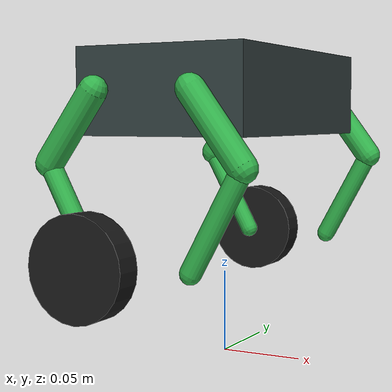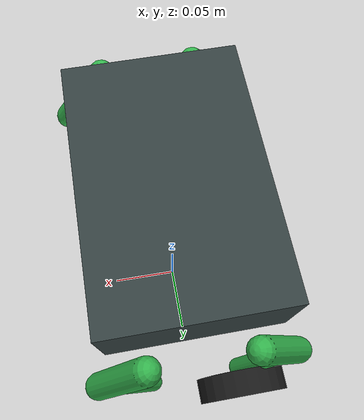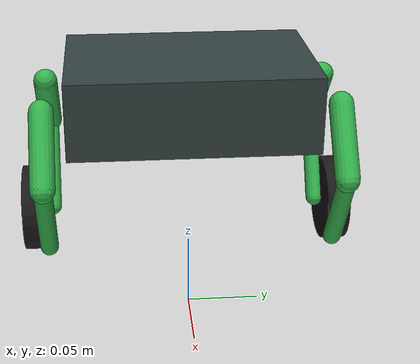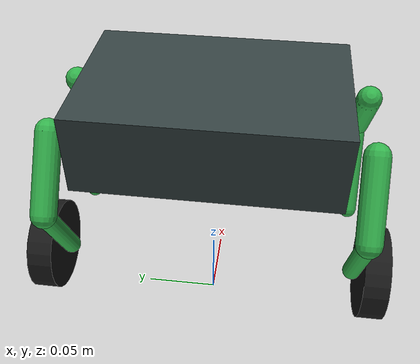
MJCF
<?xml version="1.0" ?>
<mujoco model="stackforce_mini">
  <compiler angle="radian" autolimits="true"/>

  <default>
    <default class="sf">
      <joint damping="0.03" frictionloss="0.015" armature="0.002"/>
      <geom solimp="0.9 0.95 0.001" solref="0.002 1" friction="0.8 0.02 0.002" rgba="0.2 0.7 0.3 1"/>
      <default class="visual"><geom contype="0" conaffinity="0" group="2"/></default>
      <default class="collision"><geom group="3"/></default>
      <default class="servo">
        <position kp="0.35" dampratio="1" forcerange="-0.35 0.35"/>
      </default>
      <default class="wheel_motor">
        <motor gear="1" ctrlrange="-0.25 0.25"/>
      </default>
    </default>
  </default>

  <worldbody>
    <body name="trunk_base" pos="0 0 0.160" childclass="sf">
      <freejoint name="trunk_base_freejoint"/>
      <inertial pos="0 0 0" mass="0.260" diaginertia="0.0005 0.0007 0.0004"/>
      <geom type="box" size="0.0525 0.080 0.025" class="visual" rgba="0.2 0.25 0.25 1"/>
      <geom type="box" size="0.0525 0.080 0.025" class="collision" name="trunk_collision" mass="0"/>
      <site name="imu" pos="0 0 0" size="0.005"/>

      <!-- LEFT LEG 5-BAR LINKAGE -->
      <body name="left_front_thigh" pos="0.030 0.095 0">
        <joint name="left_front_hip" type="hinge" axis="0 1 0" range="-1.2 1.2"/>
        <geom type="capsule" size="0.008" fromto="0 0 0 0.030 0 -0.040" mass="0.018" class="visual"/>
        <body name="left_front_forearm" pos="0.030 0 -0.040">
          <joint name="left_front_knee" type="hinge" axis="0 1 0" range="-2.0 2.0"/>
          <geom type="capsule" size="0.006" fromto="0 0 0 -0.030 0 -0.055" mass="0.012" class="visual"/>
          <site name="left_front_link_tip" pos="-0.030 0 -0.055" size="0.003"/>
        </body>
      </body>

      <body name="left_rear_thigh" pos="-0.030 0.095 0">
        <joint name="left_rear_hip" type="hinge" axis="0 1 0" range="-1.2 1.2"/>
        <geom type="capsule" size="0.008" fromto="0 0 0 -0.030 0 -0.040" mass="0.018" class="visual"/>
        <body name="left_rear_forearm" pos="-0.030 0 -0.040">
          <joint name="left_rear_knee" type="hinge" axis="0 1 0" range="-2.0 2.0"/>
          <geom type="capsule" size="0.006" fromto="0 0 0 0.030 0 -0.055" mass="0.012" class="visual"/>
          <site name="left_rear_link_tip" pos="0.030 0 -0.055" size="0.003"/>
          <body name="left_wheel" pos="0.030 0.012 -0.055">
            <joint name="left_wheel_joint" type="hinge" axis="0 1 0" damping="0.002" frictionloss="0.005" armature="0.001"/>
            <geom type="cylinder" size="0.030 0.008" quat="0.7071068 0.7071068 0 0" mass="0.080" friction="1.2 0.02 0.002" class="collision" name="left_wheel_collision"/>
            <geom type="cylinder" size="0.030 0.008" quat="0.7071068 0.7071068 0 0" class="visual" mass="0" rgba="0.1 0.1 0.1 1"/>
            <site name="left_wheel_center" pos="0 0 0" size="0.004"/>
          </body>
        </body>
      </body>

      <!-- RIGHT LEG 5-BAR LINKAGE -->
      <body name="right_front_thigh" pos="0.030 -0.095 0">
        <joint name="right_front_hip" type="hinge" axis="0 1 0" range="-1.2 1.2"/>
        <geom type="capsule" size="0.008" fromto="0 0 0 0.030 0 -0.040" mass="0.018" class="visual"/>
        <body name="right_front_forearm" pos="0.030 0 -0.040">
          <joint name="right_front_knee" type="hinge" axis="0 1 0" range="-2.0 2.0"/>
          <geom type="capsule" size="0.006" fromto="0 0 0 -0.030 0 -0.055" mass="0.012" class="visual"/>
          <site name="right_front_link_tip" pos="-0.030 0 -0.055" size="0.003"/>
        </body>
      </body>

      <body name="right_rear_thigh" pos="-0.030 -0.095 0">
        <joint name="right_rear_hip" type="hinge" axis="0 1 0" range="-1.2 1.2"/>
        <geom type="capsule" size="0.008" fromto="0 0 0 -0.030 0 -0.040" mass="0.018" class="visual"/>
        <body name="right_rear_forearm" pos="-0.030 0 -0.040">
          <joint name="right_rear_knee" type="hinge" axis="0 1 0" range="-2.0 2.0"/>
          <geom type="capsule" size="0.006" fromto="0 0 0 0.030 0 -0.055" mass="0.012" class="visual"/>
          <site name="right_rear_link_tip" pos="0.030 0 -0.055" size="0.003"/>
          <body name="right_wheel" pos="0.030 -0.012 -0.055">
            <joint name="right_wheel_joint" type="hinge" axis="0 1 0" damping="0.002" frictionloss="0.005" armature="0.001"/>
            <geom type="cylinder" size="0.030 0.008" quat="0.7071068 0.7071068 0 0" mass="0.080" friction="1.2 0.02 0.002" class="collision" name="right_wheel_collision"/>
            <geom type="cylinder" size="0.030 0.008" quat="0.7071068 0.7071068 0 0" class="visual" mass="0" rgba="0.1 0.1 0.1 1"/>
            <site name="right_wheel_center" pos="0 0 0" size="0.004"/>
          </body>
        </body>
      </body>
    </body>
  </worldbody>

  <equality>
    <connect name="left_5bar_closure"  body1="left_front_forearm"  body2="left_rear_forearm"  anchor="-0.030 0 -0.055" solref="0.002 1" solimp="0.99 0.999 0.0005"/>
    <connect name="right_5bar_closure" body1="right_front_forearm" body2="right_rear_forearm" anchor="-0.030 0 -0.055" solref="0.002 1" solimp="0.99 0.999 0.0005"/>
  </equality>

  <actuator>
    <position name="left_front_hip_ctrl"  joint="left_front_hip"  class="servo" ctrlrange="-1.2 1.2"/>
    <position name="left_rear_hip_ctrl"   joint="left_rear_hip"   class="servo" ctrlrange="-1.2 1.2"/>
    <position name="right_front_hip_ctrl" joint="right_front_hip" class="servo" ctrlrange="-1.2 1.2"/>
    <position name="right_rear_hip_ctrl"  joint="right_rear_hip"  class="servo" ctrlrange="-1.2 1.2"/>
    <motor name="left_wheel_ctrl"  joint="left_wheel_joint"  class="wheel_motor"/>
    <motor name="right_wheel_ctrl" joint="right_wheel_joint" class="wheel_motor"/>
  </actuator>

  <sensor>
    <accelerometer site="imu" name="accel"/>
    <gyro site="imu" name="gyro"/>
    <framequat objtype="site" objname="imu" name="orientation"/>
    <jointvel joint="left_wheel_joint" name="left_wheel_vel"/>
    <jointvel joint="right_wheel_joint" name="right_wheel_vel"/>
    <jointpos joint="left_front_hip" name="left_front_hip_pos"/>
    <jointpos joint="left_rear_hip" name="left_rear_hip_pos"/>
    <jointpos joint="right_front_hip" name="right_front_hip_pos"/>
    <jointpos joint="right_rear_hip" name="right_rear_hip_pos"/>
  </sensor>
</mujoco>
